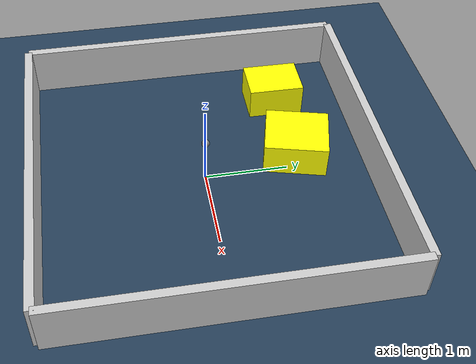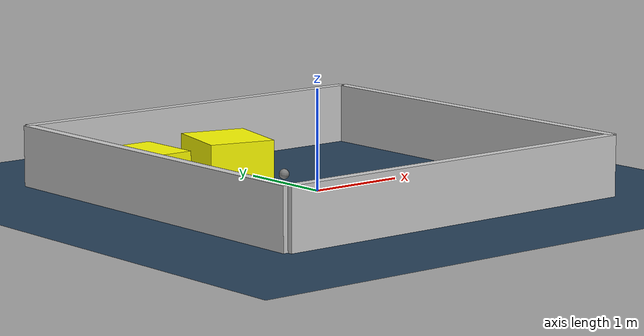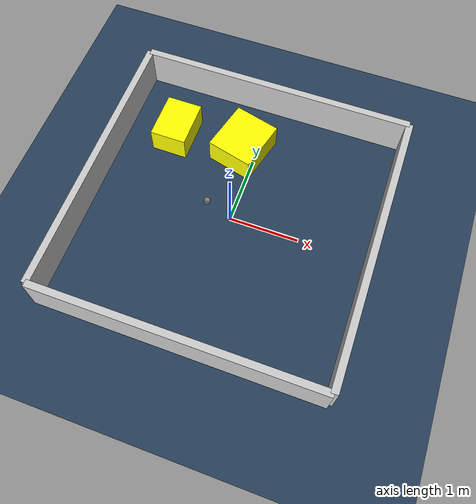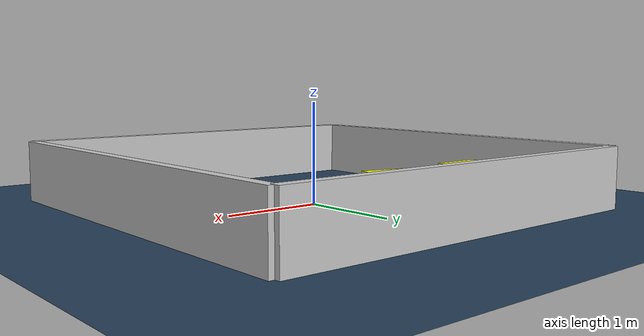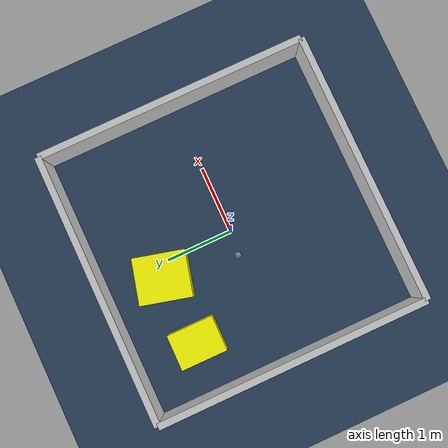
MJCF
<?xml version="1.0" ?>
<mujoco model="generated_environment">
  <option timestep="0.01" integrator="RK4" cone="elliptic"/>
  <default>
    <geom density="1"/>
  </default>
  <asset>
    <texture builtin="gradient" height="3072" rgb1="0.3 0.5 0.7" rgb2="0 0 0" type="skybox" width="512"/>
    <texture builtin="checker" height="300" mark="edge" markrgb="0.8 0.8 0.8" name="groundplane" rgb1="0.2 0.3 0.4" rgb2="0.1 0.2 0.3" type="2d" width="300"/>
    <material name="groundplane" reflectance="0.2" texrepeat="5 5" texture="groundplane" texuniform="true"/>
    <material name="robot" rgba="0.0 1.0 0.0 1"/>
  </asset>
  <worldbody>
    <light dir="0 0 -1" directional="true" pos="0 0 1.5"/>
    <geom condim="4" friction="1.0 0.005 0.001" material="groundplane" name="floor" size="0 0 0.05" type="plane"/>
    <body name="walls">
      <geom name="wall_1" condim="4" pos="-2.0 0.0 0.3" rgba="0.800000011920929 0.800000011920929 0.800000011920929 1.0" size="0.05 2.0 0.3" type="box"/>
      <geom name="wall_2" condim="4" pos="2.0 0.0 0.3" rgba="0.800000011920929 0.800000011920929 0.800000011920929 1.0" size="0.05 2.0 0.3" type="box"/>
      <geom name="wall_3" condim="4" pos="0.0 -2.0 0.3" rgba="0.800000011920929 0.800000011920929 0.800000011920929 1.0" size="2.0 0.05 0.3" type="box"/>
      <geom name="wall_4" condim="4" pos="0.0 2.0 0.3" rgba="0.800000011920929 0.800000011920929 0.800000011920929 1.0" size="2.0 0.05 0.3" type="box"/>
    </body>
    <body name="robot">
      <joint name="joint_x" type="slide" pos="0 0 0" axis="1 0 0"/>
      <joint name="joint_y" type="slide" pos="0 0 0" axis="0 1 0"/>
      <geom name="robot" type="sphere" pos="-0.3646058532745331 0.06229829450198032 0.2" size="0.05" mass="5." friction="1.0 0.005 0.0001" condim="4"/>
      <site name="sensor_ball"/>
    </body>
    <body name="obstacle_1_movable">
      <geom name="obstacle_1_movable" condim="4" pos="-1.2275766782890094 1.0853179323815847 0.2" euler="0 0 179.66283341858036" friction="1.0 0.005 0.001" rgba="1 1 0 1" size="0.2602395172835855 0.3406131248046741 0.2" type="box" mass="0.1"/>
      <joint type="free"/>
    </body>
    <body name="obstacle_2_movable">
      <geom name="obstacle_2_movable" condim="4" pos="-0.20696759321804148 1.149165164173316 0.2" euler="0 0 255.55425383442696" friction="1.0 0.005 0.001" rgba="1 1 0 1" size="0.3791553295293314 0.3367788560030582 0.2" type="box" mass="0.1"/>
      <joint type="free"/>
    </body>
  </worldbody>
  <actuator>
    <motor name="actuator_x" joint="joint_x" gear="1" ctrlrange="-1 1"/>
    <motor name="actuator_y" joint="joint_y" gear="1" ctrlrange="-1 1"/>
  </actuator>
</mujoco>
